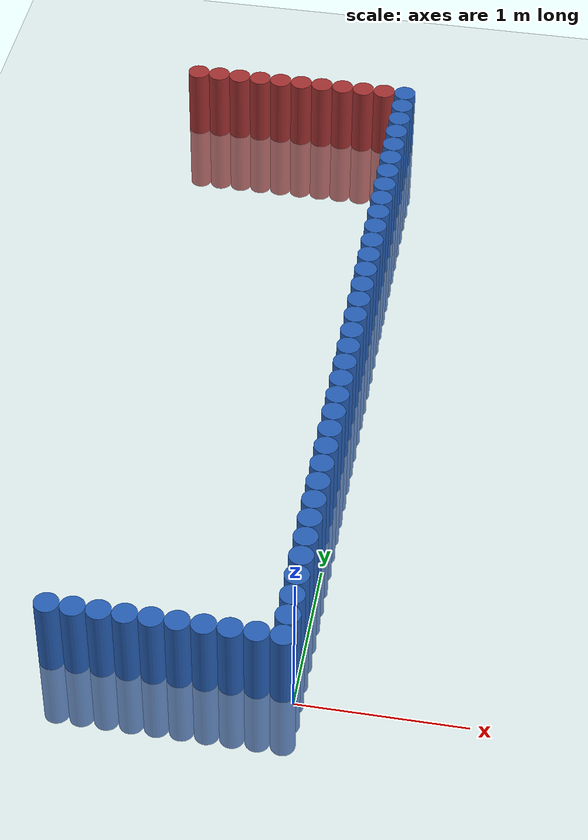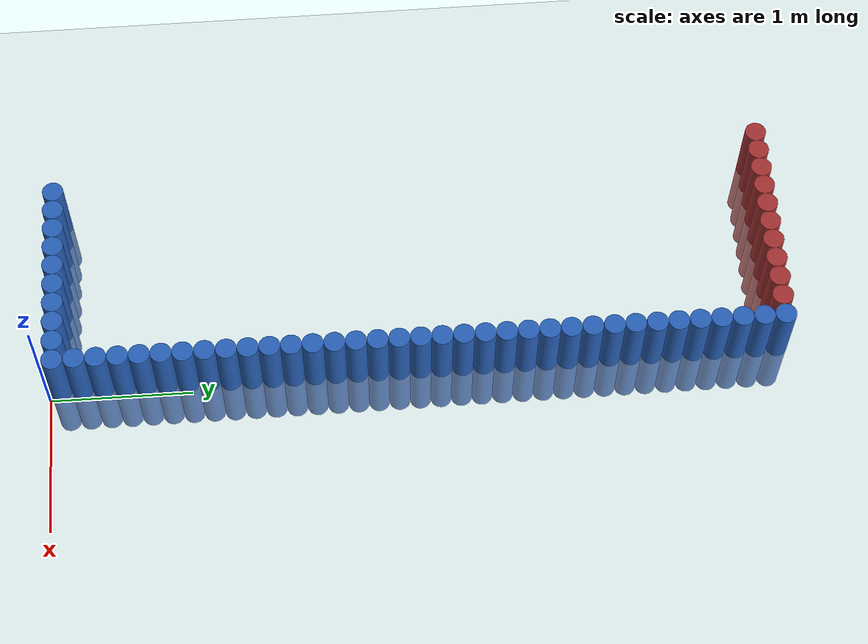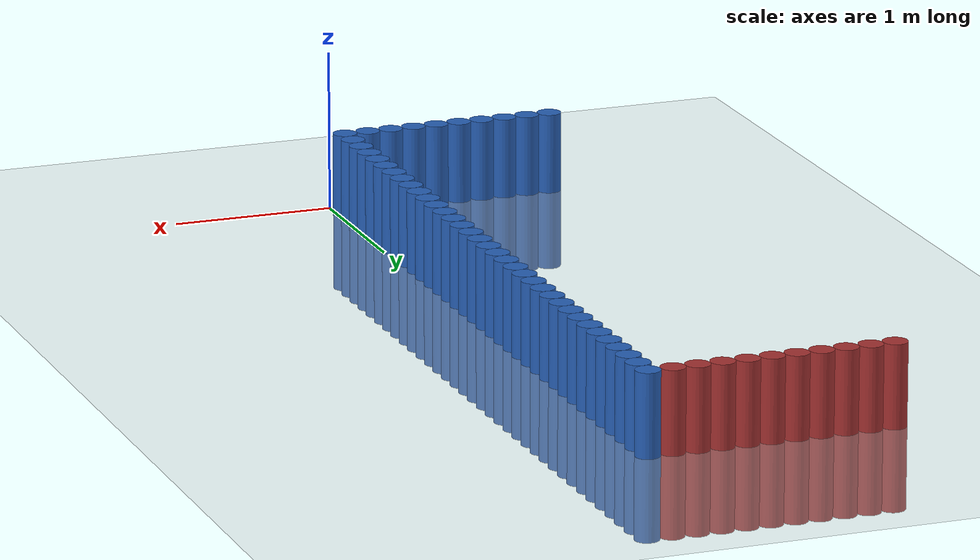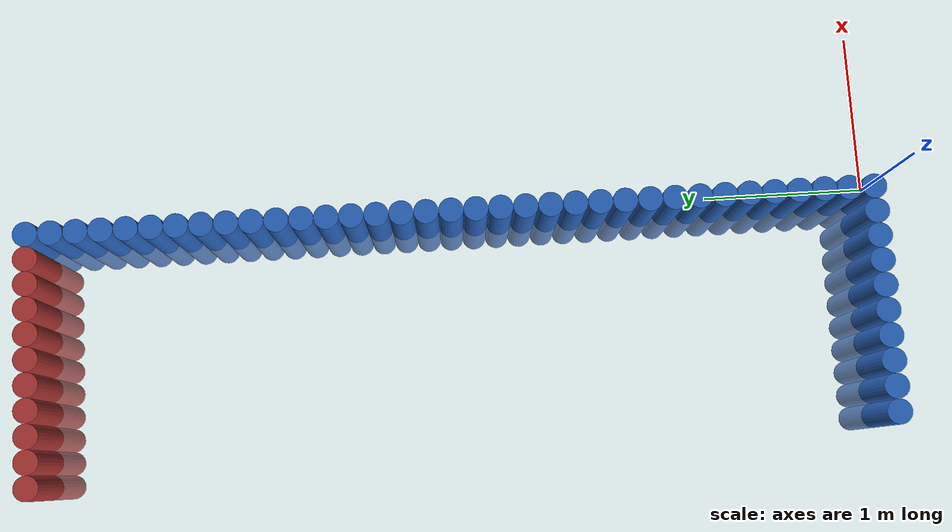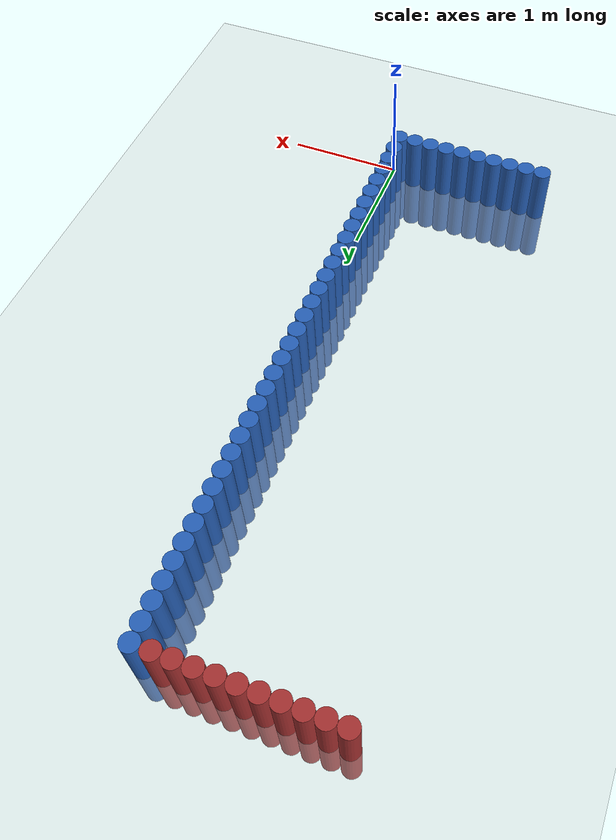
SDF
<sdf version="1.6">
 <world name="default">
  <model name="ground_plane">
   <static>1</static>
   <link name="link">
    <collision name="collision">
     <geometry><plane><normal>0 0 1</normal><size>100 100</size></plane></geometry>
     <surface><friction><ode><mu>100</mu><mu2>50</mu2></ode></friction></surface>
    </collision>
    <visual name="visual">
     <cast_shadows>0</cast_shadows>
     <geometry><plane><normal>0 0 1</normal><size>100 100</size></plane></geometry>
     <material>
      <script><uri>file://media/materials/scripts/gazebo.material</uri><name>Gazebo/Grey</name></script>
     </material>
    </visual>
   </link>
  </model>
  <model name="unit_cylinder_0">
   <static>1</static>
   <pose>-0.075000 0.075000 0.000000 0.000000 0.000000 0.000000</pose>
   <link name="link">
    <inertial>
     <mass>1</mass>
     <inertia><ixx>0.145833</ixx><ixy>0</ixy><ixz>0</ixz><iyy>0.145833</iyy><iyz>0</iyz><izz>0.125</izz></inertia>
    </inertial>
    <collision name="collision">
     <geometry><cylinder><radius>0.075000</radius><length>1</length></cylinder></geometry>
    </collision>
    <visual name="visual">
     <geometry><cylinder><radius>0.075000</radius><length>1</length></cylinder></geometry>
     <material>
      <ambient>0.152000 0.379000 0.720000 1</ambient>
      <diffuse>0.152000 0.379000 0.720000 1</diffuse>
     </material>
     <material>
      <script><name>Gazebo/Grey</name><uri>file://media/materials/scripts/gazebo.material</uri></script>
     </material>
    </visual>
   </link>
  </model>
  <model name="unit_cylinder_1">
   <static>1</static>
   <pose>-0.225000 0.075000 0.000000 0.000000 0.000000 0.000000</pose>
   <link name="link">
    <inertial>
     <mass>1</mass>
     <inertia><ixx>0.145833</ixx><ixy>0</ixy><ixz>0</ixz><iyy>0.145833</iyy><iyz>0</iyz><izz>0.125</izz></inertia>
    </inertial>
    <collision name="collision">
     <geometry><cylinder><radius>0.075000</radius><length>1</length></cylinder></geometry>
    </collision>
    <visual name="visual">
     <geometry><cylinder><radius>0.075000</radius><length>1</length></cylinder></geometry>
     <material>
      <ambient>0.152000 0.379000 0.720000 1</ambient>
      <diffuse>0.152000 0.379000 0.720000 1</diffuse>
     </material>
     <material>
      <script><name>Gazebo/Grey</name><uri>file://media/materials/scripts/gazebo.material</uri></script>
     </material>
    </visual>
   </link>
  </model>
  <model name="unit_cylinder_2">
   <static>1</static>
   <pose>-0.375000 0.075000 0.000000 0.000000 0.000000 0.000000</pose>
   <link name="link">
    <inertial>
     <mass>1</mass>
     <inertia><ixx>0.145833</ixx><ixy>0</ixy><ixz>0</ixz><iyy>0.145833</iyy><iyz>0</iyz><izz>0.125</izz></inertia>
    </inertial>
    <collision name="collision">
     <geometry><cylinder><radius>0.075000</radius><length>1</length></cylinder></geometry>
    </collision>
    <visual name="visual">
     <geometry><cylinder><radius>0.075000</radius><length>1</length></cylinder></geometry>
     <material>
      <ambient>0.152000 0.379000 0.720000 1</ambient>
      <diffuse>0.152000 0.379000 0.720000 1</diffuse>
     </material>
     <material>
      <script><name>Gazebo/Grey</name><uri>file://media/materials/scripts/gazebo.material</uri></script>
     </material>
    </visual>
   </link>
  </model>
  <model name="unit_cylinder_3">
   <static>1</static>
   <pose>-0.525000 0.075000 0.000000 0.000000 0.000000 0.000000</pose>
   <link name="link">
    <inertial>
     <mass>1</mass>
     <inertia><ixx>0.145833</ixx><ixy>0</ixy><ixz>0</ixz><iyy>0.145833</iyy><iyz>0</iyz><izz>0.125</izz></inertia>
    </inertial>
    <collision name="collision">
     <geometry><cylinder><radius>0.075000</radius><length>1</length></cylinder></geometry>
    </collision>
    <visual name="visual">
     <geometry><cylinder><radius>0.075000</radius><length>1</length></cylinder></geometry>
     <material>
      <ambient>0.152000 0.379000 0.720000 1</ambient>
      <diffuse>0.152000 0.379000 0.720000 1</diffuse>
     </material>
     <material>
      <script><name>Gazebo/Grey</name><uri>file://media/materials/scripts/gazebo.material</uri></script>
     </material>
    </visual>
   </link>
  </model>
  <model name="unit_cylinder_4">
   <static>1</static>
   <pose>-0.675000 0.075000 0.000000 0.000000 0.000000 0.000000</pose>
   <link name="link">
    <inertial>
     <mass>1</mass>
     <inertia><ixx>0.145833</ixx><ixy>0</ixy><ixz>0</ixz><iyy>0.145833</iyy><iyz>0</iyz><izz>0.125</izz></inertia>
    </inertial>
    <collision name="collision">
     <geometry><cylinder><radius>0.075000</radius><length>1</length></cylinder></geometry>
    </collision>
    <visual name="visual">
     <geometry><cylinder><radius>0.075000</radius><length>1</length></cylinder></geometry>
     <material>
      <ambient>0.152000 0.379000 0.720000 1</ambient>
      <diffuse>0.152000 0.379000 0.720000 1</diffuse>
     </material>
     <material>
      <script><name>Gazebo/Grey</name><uri>file://media/materials/scripts/gazebo.material</uri></script>
     </material>
    </visual>
   </link>
  </model>
  <model name="unit_cylinder_5">
   <static>1</static>
   <pose>-0.825000 0.075000 0.000000 0.000000 0.000000 0.000000</pose>
   <link name="link">
    <inertial>
     <mass>1</mass>
     <inertia><ixx>0.145833</ixx><ixy>0</ixy><ixz>0</ixz><iyy>0.145833</iyy><iyz>0</iyz><izz>0.125</izz></inertia>
    </inertial>
    <collision name="collision">
     <geometry><cylinder><radius>0.075000</radius><length>1</length></cylinder></geometry>
    </collision>
    <visual name="visual">
     <geometry><cylinder><radius>0.075000</radius><length>1</length></cylinder></geometry>
     <material>
      <ambient>0.152000 0.379000 0.720000 1</ambient>
      <diffuse>0.152000 0.379000 0.720000 1</diffuse>
     </material>
     <material>
      <script><name>Gazebo/Grey</name><uri>file://media/materials/scripts/gazebo.material</uri></script>
     </material>
    </visual>
   </link>
  </model>
  <model name="unit_cylinder_6">
   <static>1</static>
   <pose>-0.975000 0.075000 0.000000 0.000000 0.000000 0.000000</pose>
   <link name="link">
    <inertial>
     <mass>1</mass>
     <inertia><ixx>0.145833</ixx><ixy>0</ixy><ixz>0</ixz><iyy>0.145833</iyy><iyz>0</iyz><izz>0.125</izz></inertia>
    </inertial>
    <collision name="collision">
     <geometry><cylinder><radius>0.075000</radius><length>1</length></cylinder></geometry>
    </collision>
    <visual name="visual">
     <geometry><cylinder><radius>0.075000</radius><length>1</length></cylinder></geometry>
     <material>
      <ambient>0.152000 0.379000 0.720000 1</ambient>
      <diffuse>0.152000 0.379000 0.720000 1</diffuse>
     </material>
     <material>
      <script><name>Gazebo/Grey</name><uri>file://media/materials/scripts/gazebo.material</uri></script>
     </material>
    </visual>
   </link>
  </model>
  <model name="unit_cylinder_7">
   <static>1</static>
   <pose>-1.125000 0.075000 0.000000 0.000000 0.000000 0.000000</pose>
   <link name="link">
    <inertial>
     <mass>1</mass>
     <inertia><ixx>0.145833</ixx><ixy>0</ixy><ixz>0</ixz><iyy>0.145833</iyy><iyz>0</iyz><izz>0.125</izz></inertia>
    </inertial>
    <collision name="collision">
     <geometry><cylinder><radius>0.075000</radius><length>1</length></cylinder></geometry>
    </collision>
    <visual name="visual">
     <geometry><cylinder><radius>0.075000</radius><length>1</length></cylinder></geometry>
     <material>
      <ambient>0.152000 0.379000 0.720000 1</ambient>
      <diffuse>0.152000 0.379000 0.720000 1</diffuse>
     </material>
     <material>
      <script><name>Gazebo/Grey</name><uri>file://media/materials/scripts/gazebo.material</uri></script>
     </material>
    </visual>
   </link>
  </model>
  <model name="unit_cylinder_8">
   <static>1</static>
   <pose>-1.275000 0.075000 0.000000 0.000000 0.000000 0.000000</pose>
   <link name="link">
    <inertial>
     <mass>1</mass>
     <inertia><ixx>0.145833</ixx><ixy>0</ixy><ixz>0</ixz><iyy>0.145833</iyy><iyz>0</iyz><izz>0.125</izz></inertia>
    </inertial>
    <collision name="collision">
     <geometry><cylinder><radius>0.075000</radius><length>1</length></cylinder></geometry>
    </collision>
    <visual name="visual">
     <geometry><cylinder><radius>0.075000</radius><length>1</length></cylinder></geometry>
     <material>
      <ambient>0.152000 0.379000 0.720000 1</ambient>
      <diffuse>0.152000 0.379000 0.720000 1</diffuse>
     </material>
     <material>
      <script><name>Gazebo/Grey</name><uri>file://media/materials/scripts/gazebo.material</uri></script>
     </material>
    </visual>
   </link>
  </model>
  <model name="unit_cylinder_9">
   <static>1</static>
   <pose>-1.425000 0.075000 0.000000 0.000000 0.000000 0.000000</pose>
   <link name="link">
    <inertial>
     <mass>1</mass>
     <inertia><ixx>0.145833</ixx><ixy>0</ixy><ixz>0</ixz><iyy>0.145833</iyy><iyz>0</iyz><izz>0.125</izz></inertia>
    </inertial>
    <collision name="collision">
     <geometry><cylinder><radius>0.075000</radius><length>1</length></cylinder></geometry>
    </collision>
    <visual name="visual">
     <geometry><cylinder><radius>0.075000</radius><length>1</length></cylinder></geometry>
     <material>
      <ambient>0.152000 0.379000 0.720000 1</ambient>
      <diffuse>0.152000 0.379000 0.720000 1</diffuse>
     </material>
     <material>
      <script><name>Gazebo/Grey</name><uri>file://media/materials/scripts/gazebo.material</uri></script>
     </material>
    </visual>
   </link>
  </model>
  <model name="unit_cylinder_59">
   <static>1</static>
   <pose>-0.075000 0.225000 0.000000 0.000000 0.000000 0.000000</pose>
   <link name="link">
    <inertial>
     <mass>1</mass>
     <inertia><ixx>0.145833</ixx><ixy>0</ixy><ixz>0</ixz><iyy>0.145833</iyy><iyz>0</iyz><izz>0.125</izz></inertia>
    </inertial>
    <collision name="collision">
     <geometry><cylinder><radius>0.075000</radius><length>1</length></cylinder></geometry>
    </collision>
    <visual name="visual">
     <geometry><cylinder><radius>0.075000</radius><length>1</length></cylinder></geometry>
     <material>
      <ambient>0.152000 0.379000 0.720000 1</ambient>
      <diffuse>0.152000 0.379000 0.720000 1</diffuse>
     </material>
     <material>
      <script><name>Gazebo/Grey</name><uri>file://media/materials/scripts/gazebo.material</uri></script>
     </material>
    </visual>
   </link>
  </model>
  <model name="unit_cylinder_61">
   <static>1</static>
   <pose>-0.075000 0.375000 0.000000 0.000000 0.000000 0.000000</pose>
   <link name="link">
    <inertial>
     <mass>1</mass>
     <inertia><ixx>0.145833</ixx><ixy>0</ixy><ixz>0</ixz><iyy>0.145833</iyy><iyz>0</iyz><izz>0.125</izz></inertia>
    </inertial>
    <collision name="collision">
     <geometry><cylinder><radius>0.075000</radius><length>1</length></cylinder></geometry>
    </collision>
    <visual name="visual">
     <geometry><cylinder><radius>0.075000</radius><length>1</length></cylinder></geometry>
     <material>
      <ambient>0.152000 0.379000 0.720000 1</ambient>
      <diffuse>0.152000 0.379000 0.720000 1</diffuse>
     </material>
     <material>
      <script><name>Gazebo/Grey</name><uri>file://media/materials/scripts/gazebo.material</uri></script>
     </material>
    </visual>
   </link>
  </model>
  <model name="unit_cylinder_63">
   <static>1</static>
   <pose>-0.075000 0.525000 0.000000 0.000000 0.000000 0.000000</pose>
   <link name="link">
    <inertial>
     <mass>1</mass>
     <inertia><ixx>0.145833</ixx><ixy>0</ixy><ixz>0</ixz><iyy>0.145833</iyy><iyz>0</iyz><izz>0.125</izz></inertia>
    </inertial>
    <collision name="collision">
     <geometry><cylinder><radius>0.075000</radius><length>1</length></cylinder></geometry>
    </collision>
    <visual name="visual">
     <geometry><cylinder><radius>0.075000</radius><length>1</length></cylinder></geometry>
     <material>
      <ambient>0.152000 0.379000 0.720000 1</ambient>
      <diffuse>0.152000 0.379000 0.720000 1</diffuse>
     </material>
     <material>
      <script><name>Gazebo/Grey</name><uri>file://media/materials/scripts/gazebo.material</uri></script>
     </material>
    </visual>
   </link>
  </model>
  <model name="unit_cylinder_65">
   <static>1</static>
   <pose>-0.075000 0.675000 0.000000 0.000000 0.000000 0.000000</pose>
   <link name="link">
    <inertial>
     <mass>1</mass>
     <inertia><ixx>0.145833</ixx><ixy>0</ixy><ixz>0</ixz><iyy>0.145833</iyy><iyz>0</iyz><izz>0.125</izz></inertia>
    </inertial>
    <collision name="collision">
     <geometry><cylinder><radius>0.075000</radius><length>1</length></cylinder></geometry>
    </collision>
    <visual name="visual">
     <geometry><cylinder><radius>0.075000</radius><length>1</length></cylinder></geometry>
     <material>
      <ambient>0.152000 0.379000 0.720000 1</ambient>
      <diffuse>0.152000 0.379000 0.720000 1</diffuse>
     </material>
     <material>
      <script><name>Gazebo/Grey</name><uri>file://media/materials/scripts/gazebo.material</uri></script>
     </material>
    </visual>
   </link>
  </model>
  <model name="unit_cylinder_67">
   <static>1</static>
   <pose>-0.075000 0.825000 0.000000 0.000000 0.000000 0.000000</pose>
   <link name="link">
    <inertial>
     <mass>1</mass>
     <inertia><ixx>0.145833</ixx><ixy>0</ixy><ixz>0</ixz><iyy>0.145833</iyy><iyz>0</iyz><izz>0.125</izz></inertia>
    </inertial>
    <collision name="collision">
     <geometry><cylinder><radius>0.075000</radius><length>1</length></cylinder></geometry>
    </collision>
    <visual name="visual">
     <geometry><cylinder><radius>0.075000</radius><length>1</length></cylinder></geometry>
     <material>
      <ambient>0.152000 0.379000 0.720000 1</ambient>
      <diffuse>0.152000 0.379000 0.720000 1</diffuse>
     </material>
     <material>
      <script><name>Gazebo/Grey</name><uri>file://media/materials/scripts/gazebo.material</uri></script>
     </material>
    </visual>
   </link>
  </model>
  <model name="unit_cylinder_69">
   <static>1</static>
   <pose>-0.075000 0.975000 0.000000 0.000000 0.000000 0.000000</pose>
   <link name="link">
    <inertial>
     <mass>1</mass>
     <inertia><ixx>0.145833</ixx><ixy>0</ixy><ixz>0</ixz><iyy>0.145833</iyy><iyz>0</iyz><izz>0.125</izz></inertia>
    </inertial>
    <collision name="collision">
     <geometry><cylinder><radius>0.075000</radius><length>1</length></cylinder></geometry>
    </collision>
    <visual name="visual">
     <geometry><cylinder><radius>0.075000</radius><length>1</length></cylinder></geometry>
     <material>
      <ambient>0.152000 0.379000 0.720000 1</ambient>
      <diffuse>0.152000 0.379000 0.720000 1</diffuse>
     </material>
     <material>
      <script><name>Gazebo/Grey</name><uri>file://media/materials/scripts/gazebo.material</uri></script>
     </material>
    </visual>
   </link>
  </model>
  <model name="unit_cylinder_71">
   <static>1</static>
   <pose>-0.075000 1.125000 0.000000 0.000000 0.000000 0.000000</pose>
   <link name="link">
    <inertial>
     <mass>1</mass>
     <inertia><ixx>0.145833</ixx><ixy>0</ixy><ixz>0</ixz><iyy>0.145833</iyy><iyz>0</iyz><izz>0.125</izz></inertia>
    </inertial>
    <collision name="collision">
     <geometry><cylinder><radius>0.075000</radius><length>1</length></cylinder></geometry>
    </collision>
    <visual name="visual">
     <geometry><cylinder><radius>0.075000</radius><length>1</length></cylinder></geometry>
     <material>
      <ambient>0.152000 0.379000 0.720000 1</ambient>
      <diffuse>0.152000 0.379000 0.720000 1</diffuse>
     </material>
     <material>
      <script><name>Gazebo/Grey</name><uri>file://media/materials/scripts/gazebo.material</uri></script>
     </material>
    </visual>
   </link>
  </model>
  <model name="unit_cylinder_73">
   <static>1</static>
   <pose>-0.075000 1.275000 0.000000 0.000000 0.000000 0.000000</pose>
   <link name="link">
    <inertial>
     <mass>1</mass>
     <inertia><ixx>0.145833</ixx><ixy>0</ixy><ixz>0</ixz><iyy>0.145833</iyy><iyz>0</iyz><izz>0.125</izz></inertia>
    </inertial>
    <collision name="collision">
     <geometry><cylinder><radius>0.075000</radius><length>1</length></cylinder></geometry>
    </collision>
    <visual name="visual">
     <geometry><cylinder><radius>0.075000</radius><length>1</length></cylinder></geometry>
     <material>
      <ambient>0.152000 0.379000 0.720000 1</ambient>
      <diffuse>0.152000 0.379000 0.720000 1</diffuse>
     </material>
     <material>
      <script><name>Gazebo/Grey</name><uri>file://media/materials/scripts/gazebo.material</uri></script>
     </material>
    </visual>
   </link>
  </model>
  <model name="unit_cylinder_75">
   <static>1</static>
   <pose>-0.075000 1.425000 0.000000 0.000000 0.000000 0.000000</pose>
   <link name="link">
    <inertial>
     <mass>1</mass>
     <inertia><ixx>0.145833</ixx><ixy>0</ixy><ixz>0</ixz><iyy>0.145833</iyy><iyz>0</iyz><izz>0.125</izz></inertia>
    </inertial>
    <collision name="collision">
     <geometry><cylinder><radius>0.075000</radius><length>1</length></cylinder></geometry>
    </collision>
    <visual name="visual">
     <geometry><cylinder><radius>0.075000</radius><length>1</length></cylinder></geometry>
     <material>
      <ambient>0.152000 0.379000 0.720000 1</ambient>
      <diffuse>0.152000 0.379000 0.720000 1</diffuse>
     </material>
     <material>
      <script><name>Gazebo/Grey</name><uri>file://media/materials/scripts/gazebo.material</uri></script>
     </material>
    </visual>
   </link>
  </model>
  <model name="unit_cylinder_77">
   <static>1</static>
   <pose>-0.075000 1.575000 0.000000 0.000000 0.000000 0.000000</pose>
   <link name="link">
    <inertial>
     <mass>1</mass>
     <inertia><ixx>0.145833</ixx><ixy>0</ixy><ixz>0</ixz><iyy>0.145833</iyy><iyz>0</iyz><izz>0.125</izz></inertia>
    </inertial>
    <collision name="collision">
     <geometry><cylinder><radius>0.075000</radius><length>1</length></cylinder></geometry>
    </collision>
    <visual name="visual">
     <geometry><cylinder><radius>0.075000</radius><length>1</length></cylinder></geometry>
     <material>
      <ambient>0.152000 0.379000 0.720000 1</ambient>
      <diffuse>0.152000 0.379000 0.720000 1</diffuse>
     </material>
     <material>
      <script><name>Gazebo/Grey</name><uri>file://media/materials/scripts/gazebo.material</uri></script>
     </material>
    </visual>
   </link>
  </model>
  <model name="unit_cylinder_79">
   <static>1</static>
   <pose>-0.075000 1.725000 0.000000 0.000000 0.000000 0.000000</pose>
   <link name="link">
    <inertial>
     <mass>1</mass>
     <inertia><ixx>0.145833</ixx><ixy>0</ixy><ixz>0</ixz><iyy>0.145833</iyy><iyz>0</iyz><izz>0.125</izz></inertia>
    </inertial>
    <collision name="collision">
     <geometry><cylinder><radius>0.075000</radius><length>1</length></cylinder></geometry>
    </collision>
    <visual name="visual">
     <geometry><cylinder><radius>0.075000</radius><length>1</length></cylinder></geometry>
     <material>
      <ambient>0.152000 0.379000 0.720000 1</ambient>
      <diffuse>0.152000 0.379000 0.720000 1</diffuse>
     </material>
     <material>
      <script><name>Gazebo/Grey</name><uri>file://media/materials/scripts/gazebo.material</uri></script>
     </material>
    </visual>
   </link>
  </model>
  <model name="unit_cylinder_81">
   <static>1</static>
   <pose>-0.075000 1.875000 0.000000 0.000000 0.000000 0.000000</pose>
   <link name="link">
    <inertial>
     <mass>1</mass>
     <inertia><ixx>0.145833</ixx><ixy>0</ixy><ixz>0</ixz><iyy>0.145833</iyy><iyz>0</iyz><izz>0.125</izz></inertia>
    </inertial>
    <collision name="collision">
     <geometry><cylinder><radius>0.075000</radius><length>1</length></cylinder></geometry>
    </collision>
    <visual name="visual">
     <geometry><cylinder><radius>0.075000</radius><length>1</length></cylinder></geometry>
     <material>
      <ambient>0.152000 0.379000 0.720000 1</ambient>
      <diffuse>0.152000 0.379000 0.720000 1</diffuse>
     </material>
     <material>
      <script><name>Gazebo/Grey</name><uri>file://media/materials/scripts/gazebo.material</uri></script>
     </material>
    </visual>
   </link>
  </model>
  <model name="unit_cylinder_83">
   <static>1</static>
   <pose>-0.075000 2.025000 0.000000 0.000000 0.000000 0.000000</pose>
   <link name="link">
    <inertial>
     <mass>1</mass>
     <inertia><ixx>0.145833</ixx><ixy>0</ixy><ixz>0</ixz><iyy>0.145833</iyy><iyz>0</iyz><izz>0.125</izz></inertia>
    </inertial>
    <collision name="collision">
     <geometry><cylinder><radius>0.075000</radius><length>1</length></cylinder></geometry>
    </collision>
    <visual name="visual">
     <geometry><cylinder><radius>0.075000</radius><length>1</length></cylinder></geometry>
     <material>
      <ambient>0.152000 0.379000 0.720000 1</ambient>
      <diffuse>0.152000 0.379000 0.720000 1</diffuse>
     </material>
     <material>
      <script><name>Gazebo/Grey</name><uri>file://media/materials/scripts/gazebo.material</uri></script>
     </material>
    </visual>
   </link>
  </model>
  <model name="unit_cylinder_85">
   <static>1</static>
   <pose>-0.075000 2.175000 0.000000 0.000000 0.000000 0.000000</pose>
   <link name="link">
    <inertial>
     <mass>1</mass>
     <inertia><ixx>0.145833</ixx><ixy>0</ixy><ixz>0</ixz><iyy>0.145833</iyy><iyz>0</iyz><izz>0.125</izz></inertia>
    </inertial>
    <collision name="collision">
     <geometry><cylinder><radius>0.075000</radius><length>1</length></cylinder></geometry>
    </collision>
    <visual name="visual">
     <geometry><cylinder><radius>0.075000</radius><length>1</length></cylinder></geometry>
     <material>
      <ambient>0.152000 0.379000 0.720000 1</ambient>
      <diffuse>0.152000 0.379000 0.720000 1</diffuse>
     </material>
     <material>
      <script><name>Gazebo/Grey</name><uri>file://media/materials/scripts/gazebo.material</uri></script>
     </material>
    </visual>
   </link>
  </model>
  <model name="unit_cylinder_87">
   <static>1</static>
   <pose>-0.075000 2.325000 0.000000 0.000000 0.000000 0.000000</pose>
   <link name="link">
    <inertial>
     <mass>1</mass>
     <inertia><ixx>0.145833</ixx><ixy>0</ixy><ixz>0</ixz><iyy>0.145833</iyy><iyz>0</iyz><izz>0.125</izz></inertia>
    </inertial>
    <collision name="collision">
     <geometry><cylinder><radius>0.075000</radius><length>1</length></cylinder></geometry>
    </collision>
    <visual name="visual">
     <geometry><cylinder><radius>0.075000</radius><length>1</length></cylinder></geometry>
     <material>
      <ambient>0.152000 0.379000 0.720000 1</ambient>
      <diffuse>0.152000 0.379000 0.720000 1</diffuse>
     </material>
     <material>
      <script><name>Gazebo/Grey</name><uri>file://media/materials/scripts/gazebo.material</uri></script>
     </material>
    </visual>
   </link>
  </model>
  <model name="unit_cylinder_89">
   <static>1</static>
   <pose>-0.075000 2.475000 0.000000 0.000000 0.000000 0.000000</pose>
   <link name="link">
    <inertial>
     <mass>1</mass>
     <inertia><ixx>0.145833</ixx><ixy>0</ixy><ixz>0</ixz><iyy>0.145833</iyy><iyz>0</iyz><izz>0.125</izz></inertia>
    </inertial>
    <collision name="collision">
     <geometry><cylinder><radius>0.075000</radius><length>1</length></cylinder></geometry>
    </collision>
    <visual name="visual">
     <geometry><cylinder><radius>0.075000</radius><length>1</length></cylinder></geometry>
     <material>
      <ambient>0.152000 0.379000 0.720000 1</ambient>
      <diffuse>0.152000 0.379000 0.720000 1</diffuse>
     </material>
     <material>
      <script><name>Gazebo/Grey</name><uri>file://media/materials/scripts/gazebo.material</uri></script>
     </material>
    </visual>
   </link>
  </model>
  <model name="unit_cylinder_91">
   <static>1</static>
   <pose>-0.075000 2.625000 0.000000 0.000000 0.000000 0.000000</pose>
   <link name="link">
    <inertial>
     <mass>1</mass>
     <inertia><ixx>0.145833</ixx><ixy>0</ixy><ixz>0</ixz><iyy>0.145833</iyy><iyz>0</iyz><izz>0.125</izz></inertia>
    </inertial>
    <collision name="collision">
     <geometry><cylinder><radius>0.075000</radius><length>1</length></cylinder></geometry>
    </collision>
    <visual name="visual">
     <geometry><cylinder><radius>0.075000</radius><length>1</length></cylinder></geometry>
     <material>
      <ambient>0.152000 0.379000 0.720000 1</ambient>
      <diffuse>0.152000 0.379000 0.720000 1</diffuse>
     </material>
     <material>
      <script><name>Gazebo/Grey</name><uri>file://media/materials/scripts/gazebo.material</uri></script>
     </material>
    </visual>
   </link>
  </model>
  <model name="unit_cylinder_93">
   <static>1</static>
   <pose>-0.075000 2.775000 0.000000 0.000000 0.000000 0.000000</pose>
   <link name="link">
    <inertial>
     <mass>1</mass>
     <inertia><ixx>0.145833</ixx><ixy>0</ixy><ixz>0</ixz><iyy>0.145833</iyy><iyz>0</iyz><izz>0.125</izz></inertia>
    </inertial>
    <collision name="collision">
     <geometry><cylinder><radius>0.075000</radius><length>1</length></cylinder></geometry>
    </collision>
    <visual name="visual">
     <geometry><cylinder><radius>0.075000</radius><length>1</length></cylinder></geometry>
     <material>
      <ambient>0.152000 0.379000 0.720000 1</ambient>
      <diffuse>0.152000 0.379000 0.720000 1</diffuse>
     </material>
     <material>
      <script><name>Gazebo/Grey</name><uri>file://media/materials/scripts/gazebo.material</uri></script>
     </material>
    </visual>
   </link>
  </model>
  <model name="unit_cylinder_95">
   <static>1</static>
   <pose>-0.075000 2.925000 0.000000 0.000000 0.000000 0.000000</pose>
   <link name="link">
    <inertial>
     <mass>1</mass>
     <inertia><ixx>0.145833</ixx><ixy>0</ixy><ixz>0</ixz><iyy>0.145833</iyy><iyz>0</iyz><izz>0.125</izz></inertia>
    </inertial>
    <collision name="collision">
     <geometry><cylinder><radius>0.075000</radius><length>1</length></cylinder></geometry>
    </collision>
    <visual name="visual">
     <geometry><cylinder><radius>0.075000</radius><length>1</length></cylinder></geometry>
     <material>
      <ambient>0.152000 0.379000 0.720000 1</ambient>
      <diffuse>0.152000 0.379000 0.720000 1</diffuse>
     </material>
     <material>
      <script><name>Gazebo/Grey</name><uri>file://media/materials/scripts/gazebo.material</uri></script>
     </material>
    </visual>
   </link>
  </model>
  <model name="unit_cylinder_97">
   <static>1</static>
   <pose>-0.075000 3.075000 0.000000 0.000000 0.000000 0.000000</pose>
   <link name="link">
    <inertial>
     <mass>1</mass>
     <inertia><ixx>0.145833</ixx><ixy>0</ixy><ixz>0</ixz><iyy>0.145833</iyy><iyz>0</iyz><izz>0.125</izz></inertia>
    </inertial>
    <collision name="collision">
     <geometry><cylinder><radius>0.075000</radius><length>1</length></cylinder></geometry>
    </collision>
    <visual name="visual">
     <geometry><cylinder><radius>0.075000</radius><length>1</length></cylinder></geometry>
     <material>
      <ambient>0.152000 0.379000 0.720000 1</ambient>
      <diffuse>0.152000 0.379000 0.720000 1</diffuse>
     </material>
     <material>
      <script><name>Gazebo/Grey</name><uri>file://media/materials/scripts/gazebo.material</uri></script>
     </material>
    </visual>
   </link>
  </model>
  <model name="unit_cylinder_99">
   <static>1</static>
   <pose>-0.075000 3.225000 0.000000 0.000000 0.000000 0.000000</pose>
   <link name="link">
    <inertial>
     <mass>1</mass>
     <inertia><ixx>0.145833</ixx><ixy>0</ixy><ixz>0</ixz><iyy>0.145833</iyy><iyz>0</iyz><izz>0.125</izz></inertia>
    </inertial>
    <collision name="collision">
     <geometry><cylinder><radius>0.075000</radius><length>1</length></cylinder></geometry>
    </collision>
    <visual name="visual">
     <geometry><cylinder><radius>0.075000</radius><length>1</length></cylinder></geometry>
     <material>
      <ambient>0.152000 0.379000 0.720000 1</ambient>
      <diffuse>0.152000 0.379000 0.720000 1</diffuse>
     </material>
     <material>
      <script><name>Gazebo/Grey</name><uri>file://media/materials/scripts/gazebo.material</uri></script>
     </material>
    </visual>
   </link>
  </model>
  <model name="unit_cylinder_101">
   <static>1</static>
   <pose>-0.075000 3.375000 0.000000 0.000000 0.000000 0.000000</pose>
   <link name="link">
    <inertial>
     <mass>1</mass>
     <inertia><ixx>0.145833</ixx><ixy>0</ixy><ixz>0</ixz><iyy>0.145833</iyy><iyz>0</iyz><izz>0.125</izz></inertia>
    </inertial>
    <collision name="collision">
     <geometry><cylinder><radius>0.075000</radius><length>1</length></cylinder></geometry>
    </collision>
    <visual name="visual">
     <geometry><cylinder><radius>0.075000</radius><length>1</length></cylinder></geometry>
     <material>
      <ambient>0.152000 0.379000 0.720000 1</ambient>
      <diffuse>0.152000 0.379000 0.720000 1</diffuse>
     </material>
     <material>
      <script><name>Gazebo/Grey</name><uri>file://media/materials/scripts/gazebo.material</uri></script>
     </material>
    </visual>
   </link>
  </model>
  <model name="unit_cylinder_103">
   <static>1</static>
   <pose>-0.075000 3.525000 0.000000 0.000000 0.000000 0.000000</pose>
   <link name="link">
    <inertial>
     <mass>1</mass>
     <inertia><ixx>0.145833</ixx><ixy>0</ixy><ixz>0</ixz><iyy>0.145833</iyy><iyz>0</iyz><izz>0.125</izz></inertia>
    </inertial>
    <collision name="collision">
     <geometry><cylinder><radius>0.075000</radius><length>1</length></cylinder></geometry>
    </collision>
    <visual name="visual">
     <geometry><cylinder><radius>0.075000</radius><length>1</length></cylinder></geometry>
     <material>
      <ambient>0.152000 0.379000 0.720000 1</ambient>
      <diffuse>0.152000 0.379000 0.720000 1</diffuse>
     </material>
     <material>
      <script><name>Gazebo/Grey</name><uri>file://media/materials/scripts/gazebo.material</uri></script>
     </material>
    </visual>
   </link>
  </model>
  <model name="unit_cylinder_105">
   <static>1</static>
   <pose>-0.075000 3.675000 0.000000 0.000000 0.000000 0.000000</pose>
   <link name="link">
    <inertial>
     <mass>1</mass>
     <inertia><ixx>0.145833</ixx><ixy>0</ixy><ixz>0</ixz><iyy>0.145833</iyy><iyz>0</iyz><izz>0.125</izz></inertia>
    </inertial>
    <collision name="collision">
     <geometry><cylinder><radius>0.075000</radius><length>1</length></cylinder></geometry>
    </collision>
    <visual name="visual">
     <geometry><cylinder><radius>0.075000</radius><length>1</length></cylinder></geometry>
     <material>
      <ambient>0.152000 0.379000 0.720000 1</ambient>
      <diffuse>0.152000 0.379000 0.720000 1</diffuse>
     </material>
     <material>
      <script><name>Gazebo/Grey</name><uri>file://media/materials/scripts/gazebo.material</uri></script>
     </material>
    </visual>
   </link>
  </model>
  <model name="unit_cylinder_107">
   <static>1</static>
   <pose>-0.075000 3.825000 0.000000 0.000000 0.000000 0.000000</pose>
   <link name="link">
    <inertial>
     <mass>1</mass>
     <inertia><ixx>0.145833</ixx><ixy>0</ixy><ixz>0</ixz><iyy>0.145833</iyy><iyz>0</iyz><izz>0.125</izz></inertia>
    </inertial>
    <collision name="collision">
     <geometry><cylinder><radius>0.075000</radius><length>1</length></cylinder></geometry>
    </collision>
    <visual name="visual">
     <geometry><cylinder><radius>0.075000</radius><length>1</length></cylinder></geometry>
     <material>
      <ambient>0.152000 0.379000 0.720000 1</ambient>
      <diffuse>0.152000 0.379000 0.720000 1</diffuse>
     </material>
     <material>
      <script><name>Gazebo/Grey</name><uri>file://media/materials/scripts/gazebo.material</uri></script>
     </material>
    </visual>
   </link>
  </model>
  <model name="unit_cylinder_109">
   <static>1</static>
   <pose>-0.075000 3.975000 0.000000 0.000000 0.000000 0.000000</pose>
   <link name="link">
    <inertial>
     <mass>1</mass>
     <inertia><ixx>0.145833</ixx><ixy>0</ixy><ixz>0</ixz><iyy>0.145833</iyy><iyz>0</iyz><izz>0.125</izz></inertia>
    </inertial>
    <collision name="collision">
     <geometry><cylinder><radius>0.075000</radius><length>1</length></cylinder></geometry>
    </collision>
    <visual name="visual">
     <geometry><cylinder><radius>0.075000</radius><length>1</length></cylinder></geometry>
     <material>
      <ambient>0.152000 0.379000 0.720000 1</ambient>
      <diffuse>0.152000 0.379000 0.720000 1</diffuse>
     </material>
     <material>
      <script><name>Gazebo/Grey</name><uri>file://media/materials/scripts/gazebo.material</uri></script>
     </material>
    </visual>
   </link>
  </model>
  <model name="unit_cylinder_111">
   <static>1</static>
   <pose>-0.075000 4.125000 0.000000 0.000000 0.000000 0.000000</pose>
   <link name="link">
    <inertial>
     <mass>1</mass>
     <inertia><ixx>0.145833</ixx><ixy>0</ixy><ixz>0</ixz><iyy>0.145833</iyy><iyz>0</iyz><izz>0.125</izz></inertia>
    </inertial>
    <collision name="collision">
     <geometry><cylinder><radius>0.075000</radius><length>1</length></cylinder></geometry>
    </collision>
    <visual name="visual">
     <geometry><cylinder><radius>0.075000</radius><length>1</length></cylinder></geometry>
     <material>
      <ambient>0.152000 0.379000 0.720000 1</ambient>
      <diffuse>0.152000 0.379000 0.720000 1</diffuse>
     </material>
     <material>
      <script><name>Gazebo/Grey</name><uri>file://media/materials/scripts/gazebo.material</uri></script>
     </material>
    </visual>
   </link>
  </model>
  <model name="unit_cylinder_113">
   <static>1</static>
   <pose>-0.075000 4.275000 0.000000 0.000000 0.000000 0.000000</pose>
   <link name="link">
    <inertial>
     <mass>1</mass>
     <inertia><ixx>0.145833</ixx><ixy>0</ixy><ixz>0</ixz><iyy>0.145833</iyy><iyz>0</iyz><izz>0.125</izz></inertia>
    </inertial>
    <collision name="collision">
     <geometry><cylinder><radius>0.075000</radius><length>1</length></cylinder></geometry>
    </collision>
    <visual name="visual">
     <geometry><cylinder><radius>0.075000</radius><length>1</length></cylinder></geometry>
     <material>
      <ambient>0.152000 0.379000 0.720000 1</ambient>
      <diffuse>0.152000 0.379000 0.720000 1</diffuse>
     </material>
     <material>
      <script><name>Gazebo/Grey</name><uri>file://media/materials/scripts/gazebo.material</uri></script>
     </material>
    </visual>
   </link>
  </model>
  <model name="unit_cylinder_115">
   <static>1</static>
   <pose>-0.075000 4.425000 0.000000 0.000000 0.000000 0.000000</pose>
   <link name="link">
    <inertial>
     <mass>1</mass>
     <inertia><ixx>0.145833</ixx><ixy>0</ixy><ixz>0</ixz><iyy>0.145833</iyy><iyz>0</iyz><izz>0.125</izz></inertia>
    </inertial>
    <collision name="collision">
     <geometry><cylinder><radius>0.075000</radius><length>1</length></cylinder></geometry>
    </collision>
    <visual name="visual">
     <geometry><cylinder><radius>0.075000</radius><length>1</length></cylinder></geometry>
     <material>
      <ambient>0.152000 0.379000 0.720000 1</ambient>
      <diffuse>0.152000 0.379000 0.720000 1</diffuse>
     </material>
     <material>
      <script><name>Gazebo/Grey</name><uri>file://media/materials/scripts/gazebo.material</uri></script>
     </material>
    </visual>
   </link>
  </model>
  <model name="unit_cylinder_117">
   <static>1</static>
   <pose>-0.075000 4.575000 0.000000 0.000000 0.000000 0.000000</pose>
   <link name="link">
    <inertial>
     <mass>1</mass>
     <inertia><ixx>0.145833</ixx><ixy>0</ixy><ixz>0</ixz><iyy>0.145833</iyy><iyz>0</iyz><izz>0.125</izz></inertia>
    </inertial>
    <collision name="collision">
     <geometry><cylinder><radius>0.075000</radius><length>1</length></cylinder></geometry>
    </collision>
    <visual name="visual">
     <geometry><cylinder><radius>0.075000</radius><length>1</length></cylinder></geometry>
     <material>
      <ambient>0.152000 0.379000 0.720000 1</ambient>
      <diffuse>0.152000 0.379000 0.720000 1</diffuse>
     </material>
     <material>
      <script><name>Gazebo/Grey</name><uri>file://media/materials/scripts/gazebo.material</uri></script>
     </material>
    </visual>
   </link>
  </model>
  <model name="unit_cylinder_119">
   <static>1</static>
   <pose>-0.075000 4.725000 0.000000 0.000000 0.000000 0.000000</pose>
   <link name="link">
    <inertial>
     <mass>1</mass>
     <inertia><ixx>0.145833</ixx><ixy>0</ixy><ixz>0</ixz><iyy>0.145833</iyy><iyz>0</iyz><izz>0.125</izz></inertia>
    </inertial>
    <collision name="collision">
     <geometry><cylinder><radius>0.075000</radius><length>1</length></cylinder></geometry>
    </collision>
    <visual name="visual">
     <geometry><cylinder><radius>0.075000</radius><length>1</length></cylinder></geometry>
     <material>
      <ambient>0.152000 0.379000 0.720000 1</ambient>
      <diffuse>0.152000 0.379000 0.720000 1</diffuse>
     </material>
     <material>
      <script><name>Gazebo/Grey</name><uri>file://media/materials/scripts/gazebo.material</uri></script>
     </material>
    </visual>
   </link>
  </model>
  <model name="unit_cylinder_121">
   <static>1</static>
   <pose>-0.075000 4.875000 0.000000 0.000000 0.000000 0.000000</pose>
   <link name="link">
    <inertial>
     <mass>1</mass>
     <inertia><ixx>0.145833</ixx><ixy>0</ixy><ixz>0</ixz><iyy>0.145833</iyy><iyz>0</iyz><izz>0.125</izz></inertia>
    </inertial>
    <collision name="collision">
     <geometry><cylinder><radius>0.075000</radius><length>1</length></cylinder></geometry>
    </collision>
    <visual name="visual">
     <geometry><cylinder><radius>0.075000</radius><length>1</length></cylinder></geometry>
     <material>
      <ambient>0.152000 0.379000 0.720000 1</ambient>
      <diffuse>0.152000 0.379000 0.720000 1</diffuse>
     </material>
     <material>
      <script><name>Gazebo/Grey</name><uri>file://media/materials/scripts/gazebo.material</uri></script>
     </material>
    </visual>
   </link>
  </model>
  <model name="unit_cylinder_123">
   <static>1</static>
   <pose>-0.075000 5.025000 0.000000 0.000000 0.000000 0.000000</pose>
   <link name="link">
    <inertial>
     <mass>1</mass>
     <inertia><ixx>0.145833</ixx><ixy>0</ixy><ixz>0</ixz><iyy>0.145833</iyy><iyz>0</iyz><izz>0.125</izz></inertia>
    </inertial>
    <collision name="collision">
     <geometry><cylinder><radius>0.075000</radius><length>1</length></cylinder></geometry>
    </collision>
    <visual name="visual">
     <geometry><cylinder><radius>0.075000</radius><length>1</length></cylinder></geometry>
     <material>
      <ambient>0.152000 0.379000 0.720000 1</ambient>
      <diffuse>0.152000 0.379000 0.720000 1</diffuse>
     </material>
     <material>
      <script><name>Gazebo/Grey</name><uri>file://media/materials/scripts/gazebo.material</uri></script>
     </material>
    </visual>
   </link>
  </model>
  <model name="unit_cylinder_333">
   <static>1</static>
   <pose>-1.575000 5.175000 0.000000 0.000000 0.000000 0.000000</pose>
   <link name="link">
    <inertial>
     <mass>1</mass>
     <inertia><ixx>0.145833</ixx><ixy>0</ixy><ixz>0</ixz><iyy>0.145833</iyy><iyz>0</iyz><izz>0.125</izz></inertia>
    </inertial>
    <collision name="collision">
     <geometry><cylinder><radius>0.075000</radius><length>1</length></cylinder></geometry>
    </collision>
    <visual name="visual">
     <geometry><cylinder><radius>0.075000</radius><length>1</length></cylinder></geometry>
     <material>
      <ambient>0.648000 0.192000 0.192000 1</ambient>
      <diffuse>0.648000 0.192000 0.192000 1</diffuse>
     </material>
     <material>
      <script><name>Gazebo/Grey</name><uri>file://media/materials/scripts/gazebo.material</uri></script>
     </material>
    </visual>
   </link>
  </model>
  <model name="unit_cylinder_335">
   <static>1</static>
   <pose>-1.425000 5.175000 0.000000 0.000000 0.000000 0.000000</pose>
   <link name="link">
    <inertial>
     <mass>1</mass>
     <inertia><ixx>0.145833</ixx><ixy>0</ixy><ixz>0</ixz><iyy>0.145833</iyy><iyz>0</iyz><izz>0.125</izz></inertia>
    </inertial>
    <collision name="collision">
     <geometry><cylinder><radius>0.075000</radius><length>1</length></cylinder></geometry>
    </collision>
    <visual name="visual">
     <geometry><cylinder><radius>0.075000</radius><length>1</length></cylinder></geometry>
     <material>
      <ambient>0.648000 0.192000 0.192000 1</ambient>
      <diffuse>0.648000 0.192000 0.192000 1</diffuse>
     </material>
     <material>
      <script><name>Gazebo/Grey</name><uri>file://media/materials/scripts/gazebo.material</uri></script>
     </material>
    </visual>
   </link>
  </model>
  <model name="unit_cylinder_337">
   <static>1</static>
   <pose>-1.275000 5.175000 0.000000 0.000000 0.000000 0.000000</pose>
   <link name="link">
    <inertial>
     <mass>1</mass>
     <inertia><ixx>0.145833</ixx><ixy>0</ixy><ixz>0</ixz><iyy>0.145833</iyy><iyz>0</iyz><izz>0.125</izz></inertia>
    </inertial>
    <collision name="collision">
     <geometry><cylinder><radius>0.075000</radius><length>1</length></cylinder></geometry>
    </collision>
    <visual name="visual">
     <geometry><cylinder><radius>0.075000</radius><length>1</length></cylinder></geometry>
     <material>
      <ambient>0.648000 0.192000 0.192000 1</ambient>
      <diffuse>0.648000 0.192000 0.192000 1</diffuse>
     </material>
     <material>
      <script><name>Gazebo/Grey</name><uri>file://media/materials/scripts/gazebo.material</uri></script>
     </material>
    </visual>
   </link>
  </model>
  <model name="unit_cylinder_339">
   <static>1</static>
   <pose>-1.125000 5.175000 0.000000 0.000000 0.000000 0.000000</pose>
   <link name="link">
    <inertial>
     <mass>1</mass>
     <inertia><ixx>0.145833</ixx><ixy>0</ixy><ixz>0</ixz><iyy>0.145833</iyy><iyz>0</iyz><izz>0.125</izz></inertia>
    </inertial>
    <collision name="collision">
     <geometry><cylinder><radius>0.075000</radius><length>1</length></cylinder></geometry>
    </collision>
    <visual name="visual">
     <geometry><cylinder><radius>0.075000</radius><length>1</length></cylinder></geometry>
     <material>
      <ambient>0.648000 0.192000 0.192000 1</ambient>
      <diffuse>0.648000 0.192000 0.192000 1</diffuse>
     </material>
     <material>
      <script><name>Gazebo/Grey</name><uri>file://media/materials/scripts/gazebo.material</uri></script>
     </material>
    </visual>
   </link>
  </model>
  <model name="unit_cylinder_341">
   <static>1</static>
   <pose>-0.975000 5.175000 0.000000 0.000000 0.000000 0.000000</pose>
   <link name="link">
    <inertial>
     <mass>1</mass>
     <inertia><ixx>0.145833</ixx><ixy>0</ixy><ixz>0</ixz><iyy>0.145833</iyy><iyz>0</iyz><izz>0.125</izz></inertia>
    </inertial>
    <collision name="collision">
     <geometry><cylinder><radius>0.075000</radius><length>1</length></cylinder></geometry>
    </collision>
    <visual name="visual">
     <geometry><cylinder><radius>0.075000</radius><length>1</length></cylinder></geometry>
     <material>
      <ambient>0.648000 0.192000 0.192000 1</ambient>
      <diffuse>0.648000 0.192000 0.192000 1</diffuse>
     </material>
     <material>
      <script><name>Gazebo/Grey</name><uri>file://media/materials/scripts/gazebo.material</uri></script>
     </material>
    </visual>
   </link>
  </model>
  <model name="unit_cylinder_343">
   <static>1</static>
   <pose>-0.825000 5.175000 0.000000 0.000000 0.000000 0.000000</pose>
   <link name="link">
    <inertial>
     <mass>1</mass>
     <inertia><ixx>0.145833</ixx><ixy>0</ixy><ixz>0</ixz><iyy>0.145833</iyy><iyz>0</iyz><izz>0.125</izz></inertia>
    </inertial>
    <collision name="collision">
     <geometry><cylinder><radius>0.075000</radius><length>1</length></cylinder></geometry>
    </collision>
    <visual name="visual">
     <geometry><cylinder><radius>0.075000</radius><length>1</length></cylinder></geometry>
     <material>
      <ambient>0.648000 0.192000 0.192000 1</ambient>
      <diffuse>0.648000 0.192000 0.192000 1</diffuse>
     </material>
     <material>
      <script><name>Gazebo/Grey</name><uri>file://media/materials/scripts/gazebo.material</uri></script>
     </material>
    </visual>
   </link>
  </model>
  <model name="unit_cylinder_345">
   <static>1</static>
   <pose>-0.675000 5.175000 0.000000 0.000000 0.000000 0.000000</pose>
   <link name="link">
    <inertial>
     <mass>1</mass>
     <inertia><ixx>0.145833</ixx><ixy>0</ixy><ixz>0</ixz><iyy>0.145833</iyy><iyz>0</iyz><izz>0.125</izz></inertia>
    </inertial>
    <collision name="collision">
     <geometry><cylinder><radius>0.075000</radius><length>1</length></cylinder></geometry>
    </collision>
    <visual name="visual">
     <geometry><cylinder><radius>0.075000</radius><length>1</length></cylinder></geometry>
     <material>
      <ambient>0.648000 0.192000 0.192000 1</ambient>
      <diffuse>0.648000 0.192000 0.192000 1</diffuse>
     </material>
     <material>
      <script><name>Gazebo/Grey</name><uri>file://media/materials/scripts/gazebo.material</uri></script>
     </material>
    </visual>
   </link>
  </model>
  <model name="unit_cylinder_347">
   <static>1</static>
   <pose>-0.525000 5.175000 0.000000 0.000000 0.000000 0.000000</pose>
   <link name="link">
    <inertial>
     <mass>1</mass>
     <inertia><ixx>0.145833</ixx><ixy>0</ixy><ixz>0</ixz><iyy>0.145833</iyy><iyz>0</iyz><izz>0.125</izz></inertia>
    </inertial>
    <collision name="collision">
     <geometry><cylinder><radius>0.075000</radius><length>1</length></cylinder></geometry>
    </collision>
    <visual name="visual">
     <geometry><cylinder><radius>0.075000</radius><length>1</length></cylinder></geometry>
     <material>
      <ambient>0.648000 0.192000 0.192000 1</ambient>
      <diffuse>0.648000 0.192000 0.192000 1</diffuse>
     </material>
     <material>
      <script><name>Gazebo/Grey</name><uri>file://media/materials/scripts/gazebo.material</uri></script>
     </material>
    </visual>
   </link>
  </model>
  <model name="unit_cylinder_349">
   <static>1</static>
   <pose>-0.375000 5.175000 0.000000 0.000000 0.000000 0.000000</pose>
   <link name="link">
    <inertial>
     <mass>1</mass>
     <inertia><ixx>0.145833</ixx><ixy>0</ixy><ixz>0</ixz><iyy>0.145833</iyy><iyz>0</iyz><izz>0.125</izz></inertia>
    </inertial>
    <collision name="collision">
     <geometry><cylinder><radius>0.075000</radius><length>1</length></cylinder></geometry>
    </collision>
    <visual name="visual">
     <geometry><cylinder><radius>0.075000</radius><length>1</length></cylinder></geometry>
     <material>
      <ambient>0.648000 0.192000 0.192000 1</ambient>
      <diffuse>0.648000 0.192000 0.192000 1</diffuse>
     </material>
     <material>
      <script><name>Gazebo/Grey</name><uri>file://media/materials/scripts/gazebo.material</uri></script>
     </material>
    </visual>
   </link>
  </model>
  <model name="unit_cylinder_351">
   <static>1</static>
   <pose>-0.225000 5.175000 0.000000 0.000000 0.000000 0.000000</pose>
   <link name="link">
    <inertial>
     <mass>1</mass>
     <inertia><ixx>0.145833</ixx><ixy>0</ixy><ixz>0</ixz><iyy>0.145833</iyy><iyz>0</iyz><izz>0.125</izz></inertia>
    </inertial>
    <collision name="collision">
     <geometry><cylinder><radius>0.075000</radius><length>1</length></cylinder></geometry>
    </collision>
    <visual name="visual">
     <geometry><cylinder><radius>0.075000</radius><length>1</length></cylinder></geometry>
     <material>
      <ambient>0.648000 0.192000 0.192000 1</ambient>
      <diffuse>0.648000 0.192000 0.192000 1</diffuse>
     </material>
     <material>
      <script><name>Gazebo/Grey</name><uri>file://media/materials/scripts/gazebo.material</uri></script>
     </material>
    </visual>
   </link>
  </model>
  <model name="unit_cylinder_353">
   <static>1</static>
   <pose>-0.075000 5.175000 0.000000 0.000000 0.000000 0.000000</pose>
   <link name="link">
    <inertial>
     <mass>1</mass>
     <inertia><ixx>0.145833</ixx><ixy>0</ixy><ixz>0</ixz><iyy>0.145833</iyy><iyz>0</iyz><izz>0.125</izz></inertia>
    </inertial>
    <collision name="collision">
     <geometry><cylinder><radius>0.075000</radius><length>1</length></cylinder></geometry>
    </collision>
    <visual name="visual">
     <geometry><cylinder><radius>0.075000</radius><length>1</length></cylinder></geometry>
     <material>
      <ambient>0.152000 0.379000 0.720000 1</ambient>
      <diffuse>0.152000 0.379000 0.720000 1</diffuse>
     </material>
     <material>
      <script><name>Gazebo/Grey</name><uri>file://media/materials/scripts/gazebo.material</uri></script>
     </material>
    </visual>
   </link>
  </model>
 </world>
</sdf>
